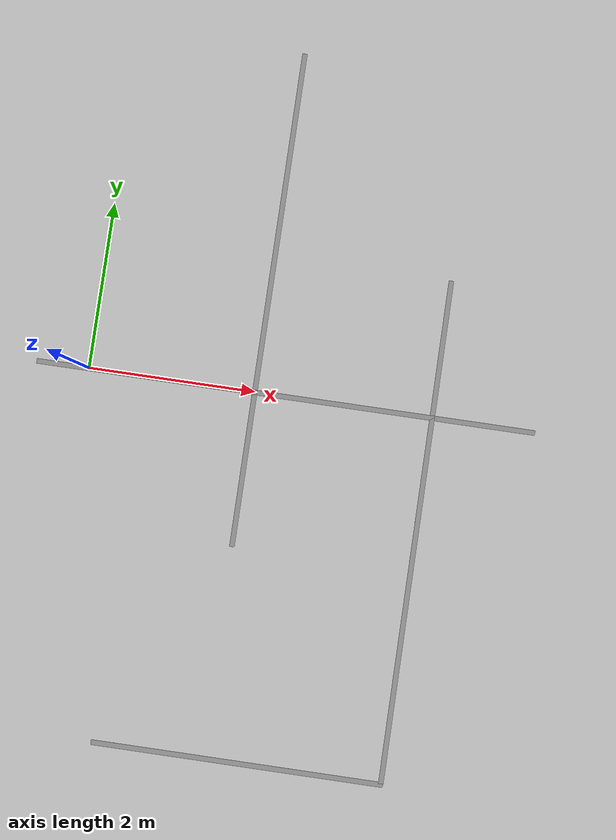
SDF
<?xml version="1.0"?>
<sdf version="1.6">
  <world name="default">

    <include>
      <uri>model://ground_plane</uri>
    </include>

    <include>
      <uri>model://sun</uri>
    </include>

    <scene>
      <shadows>false</shadows>
    </scene>

    <gui fullscreen='0'>
      <camera name='user_camera'>
        <pose frame=''>0.319654 -0.235002 9.29441 0 1.5138 0.009599</pose>
        <view_controller>orbit</view_controller>
        <projection_type>perspective</projection_type>
      </camera>
    </gui>

    <physics type="ode">
      <real_time_update_rate>1000.0</real_time_update_rate>
      <max_step_size>0.001</max_step_size>
      <real_time_factor>1</real_time_factor>
      <ode>
        <solver>
          <type>quick</type>
          <iters>150</iters>
          <precon_iters>0</precon_iters>
          <sor>1.400000</sor>
          <use_dynamic_moi_rescaling>1</use_dynamic_moi_rescaling>
        </solver>
        <constraints>
          <cfm>0.00001</cfm>
          <erp>0.2</erp>
          <contact_max_correcting_vel>2000.000000</contact_max_correcting_vel>
          <contact_surface_layer>0.01000</contact_surface_layer>
        </constraints>
      </ode>
    </physics>

    <model name="SimpleTrack">
      <static>1</static>
      <include>
        <uri>model://SimpleTrack</uri>
      </include>
    </model>

  </world>
</sdf>

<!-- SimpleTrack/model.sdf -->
<sdf version='1.7'>
  <model name='SimpleTrack'>
    <link name='SimpleTrack::link_0'>
      <inertial>
        <mass>1</mass>
        <inertia>
          <ixx>0.166667</ixx>
          <ixy>0</ixy>
          <ixz>0</ixz>
          <iyy>0.166667</iyy>
          <iyz>0</iyz>
          <izz>0.166667</izz>
        </inertia>
        <pose>0 0 0 0 -0 0</pose>
      </inertial>
      <pose>2.3645 -0.003363 0.001 0 -0 0</pose>
      <gravity>0</gravity>
      <self_collide>0</self_collide>
      <kinematic>1</kinematic>
      <enable_wind>0</enable_wind>
      <visual name='visual'>
        <pose>0 0 0 0 -0 0</pose>
        <geometry>
          <box>
            <size>6 0.06 0.0001</size>
          </box>
        </geometry>
        <material>
          <lighting>1</lighting>
          <script>
            <uri>file://media/materials/scripts/gazebo.material</uri>
            <name>Gazebo/Grey</name>
          </script>
          <shader type='pixel'>
            <normal_map>__default__</normal_map>
          </shader>
          <ambient>0 0 0 1</ambient>
          <diffuse>0 0 0 1</diffuse>
          <specular>0 0 0 1</specular>
          <emissive>0 0 0 1</emissive>
        </material>
        <transparency>0</transparency>
        <cast_shadows>1</cast_shadows>
      </visual>
    </link>
    <link name='SimpleTrack::link_0_clone'>
      <inertial>
        <mass>1</mass>
        <inertia>
          <ixx>0.166667</ixx>
          <ixy>0</ixy>
          <ixz>0</ixz>
          <iyy>0.166667</iyy>
          <iyz>0</iyz>
          <izz>0.166667</izz>
        </inertia>
        <pose>0 0 0 0 -0 0</pose>
      </inertial>
      <pose>1.99586 1.14529 0.001 0 -0 1.56958</pose>
      <gravity>1</gravity>
      <self_collide>0</self_collide>
      <kinematic>1</kinematic>
      <enable_wind>0</enable_wind>
      <visual name='visual'>
        <pose>0 0 0 0 -0 0</pose>
        <geometry>
          <box>
            <size>6 0.06 0.0001</size>
          </box>
        </geometry>
        <material>
          <lighting>1</lighting>
          <script>
            <uri>file://media/materials/scripts/gazebo.material</uri>
            <name>Gazebo/Grey</name>
          </script>
          <shader type='pixel'>
            <normal_map>__default__</normal_map>
          </shader>
          <ambient>0 0 0 1</ambient>
          <diffuse>0 0 0 1</diffuse>
          <specular>0 0 0 1</specular>
          <emissive>0 0 0 1</emissive>
        </material>
        <transparency>0</transparency>
        <cast_shadows>1</cast_shadows>
      </visual>
    </link>
    <link name='SimpleTrack::link_0_clone_0'>
      <inertial>
        <mass>1</mass>
        <inertia>
          <ixx>0.166667</ixx>
          <ixy>0</ixy>
          <ixz>0</ixz>
          <iyy>0.166667</iyy>
          <iyz>0</iyz>
          <izz>0.166667</izz>
        </inertia>
        <pose>0 0 0 0 -0 0</pose>
      </inertial>
      <pose>2.41909 -4.35053 0.001 0 -0 0</pose>
      <gravity>0</gravity>
      <self_collide>0</self_collide>
      <kinematic>1</kinematic>
      <enable_wind>0</enable_wind>
      <visual name='visual'>
        <pose>0 0 0 0 -0 0</pose>
        <geometry>
          <box>
            <size>3.46189 0.06 0.0001</size>
          </box>
        </geometry>
        <material>
          <lighting>1</lighting>
          <script>
            <uri>file://media/materials/scripts/gazebo.material</uri>
            <name>Gazebo/Grey</name>
          </script>
          <shader type='pixel'>
            <normal_map>__default__</normal_map>
          </shader>
          <ambient>0 0 0 1</ambient>
          <diffuse>0 0 0 1</diffuse>
          <specular>0 0 0 1</specular>
          <emissive>0 0 0 1</emissive>
        </material>
        <transparency>0</transparency>
        <cast_shadows>1</cast_shadows>
      </visual>
    </link>
    <link name='SimpleTrack::link_0_clone_clone'>
      <inertial>
        <mass>1</mass>
        <inertia>
          <ixx>0.166667</ixx>
          <ixy>0</ixy>
          <ixz>0</ixz>
          <iyy>0.166667</iyy>
          <iyz>0</iyz>
          <izz>0.166667</izz>
        </inertia>
        <pose>0 0 0 0 -0 0</pose>
      </inertial>
      <pose>4.12792 -1.34032 0.001 0 -0 1.56958</pose>
      <gravity>1</gravity>
      <self_collide>0</self_collide>
      <kinematic>1</kinematic>
      <enable_wind>0</enable_wind>
      <visual name='visual'>
        <pose>0 0 0 0 -0 0</pose>
        <geometry>
          <box>
            <size>6 0.06 0.0001</size>
          </box>
        </geometry>
        <material>
          <lighting>1</lighting>
          <script>
            <uri>file://media/materials/scripts/gazebo.material</uri>
            <name>Gazebo/Grey</name>
          </script>
          <shader type='pixel'>
            <normal_map>__default__</normal_map>
          </shader>
          <ambient>0 0 0 1</ambient>
          <diffuse>0 0 0 1</diffuse>
          <specular>0 0 0 1</specular>
          <emissive>0 0 0 1</emissive>
        </material>
        <transparency>0</transparency>
        <cast_shadows>1</cast_shadows>
      </visual>
    </link>
    <static>1</static>
    <allow_auto_disable>1</allow_auto_disable>
  </model>
</sdf>
